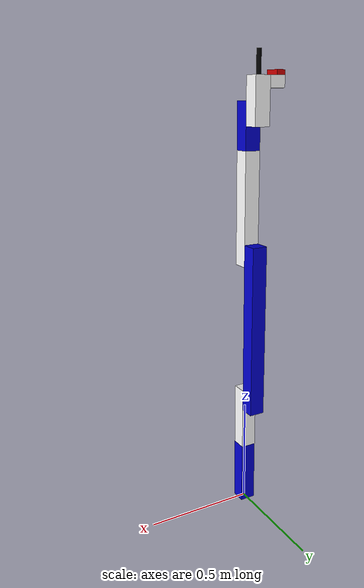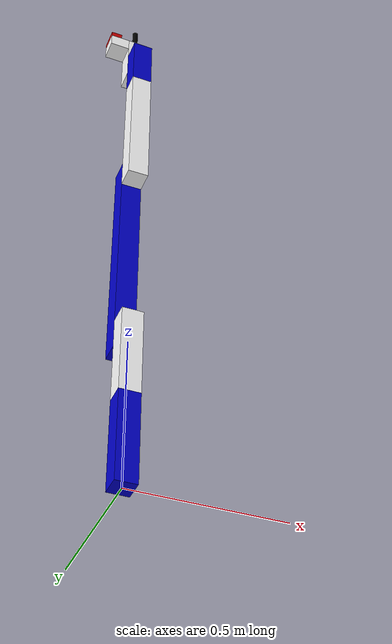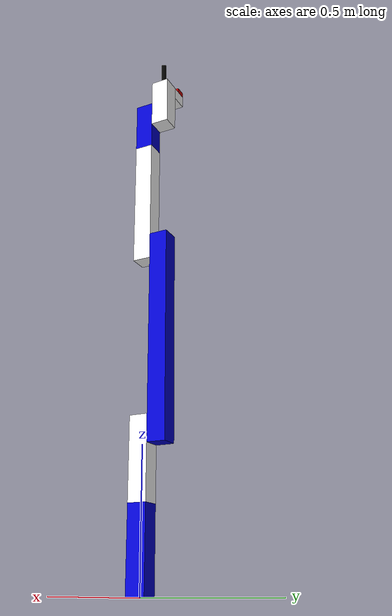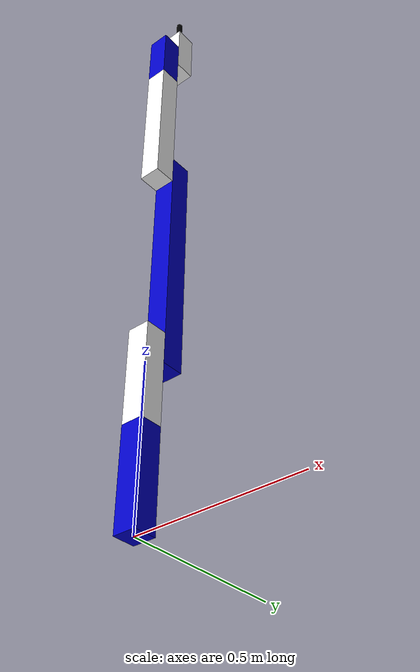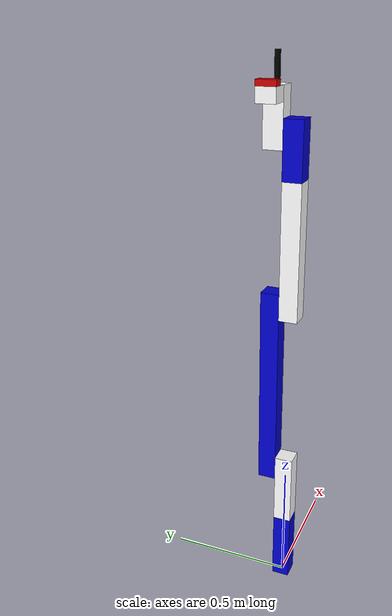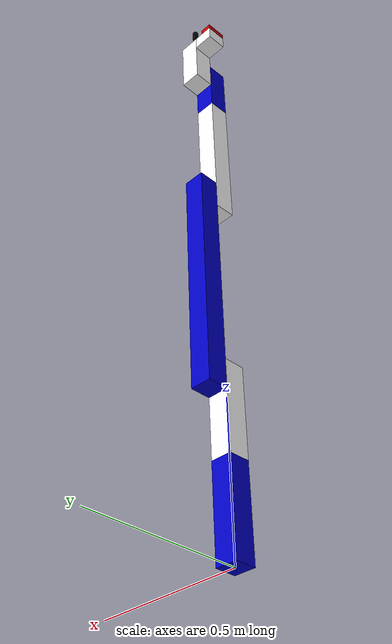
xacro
<?xml version="1.0"?>
<robot name="myrobot" xmlns:xacro="http://ros.org/wiki/xacro">
  <xacro:property name="width" value='0.07'/>
  <!--materials-->
  <material name="blue">
    <color rgba="0 0 0.8 1"/>
  </material>

  <material name="black">
    <color rgba="0 0 0 1"/>
  </material>

  <material name="white">
    <color rgba="1 1 1 1"/>
  </material>

  <material name="red">
    <color rgba="0.8 0.0 0.0 1.0"/>
  </material>
  <!--inertia macro-->
  <xacro:macro name="default_inertial" params="mass w h">
    <inertial>
      <mass value="${mass}" />
      <inertia ixx="1.0" ixy="0.0" ixz="0.0" iyy="1.0" iyz="0.0" izz="1.0" />
    </inertial>
  </xacro:macro>
<!--world link-->
  <link name="world"/>
<!--base link-->
  <link name="link_base">
    <visual>
        <origin xyz="0.0 0.0 0.15"/>
        <geometry>
            <box size= "${width} ${width} 0.3"/>
        </geometry>
        <material name="blue"/>
    </visual>
    <collision>
        <origin xyz="0.0 0.0 0.15"/>
        <geometry>
            <box size= "${width} ${width} 0.3"/>
        </geometry>
    </collision>
    <xacro:default_inertial mass="1" w="${width}" h="0.3"/>
  </link>
  <gazebo reference= "link_base">
      <mu1>0.2</mu1>
      <mu2>0.2</mu2>
      <material>Gazebo/Blue</material>
  </gazebo>
<!--second link z-axis rotate-->

    <link name="link_1">
        <visual>
            <origin xyz="0.0 0.0 0.15"/>
            <geometry>
                <box size="${width} ${width} 0.3"/>
            </geometry>
            <material name="white"/>
        </visual>
        <collision>
            <origin xyz="0.0 0.0 0.15"/>
            <geometry>
                <box size="${width} ${width} 0.3"/>
            </geometry>
        </collision>
        <xacro:default_inertial mass="1" w="${width}" h="0.3"/>
    </link>
    <gazebo reference= "link_1">
      <mu1>0.2</mu1>
      <mu2>0.2</mu2>
      <material>Gazebo/White</material>
    </gazebo>

<!--3th link z-axis rotate-->

    <link name="link_2">
        <visual>
            <origin xyz="0.0 0.0 0.35"/>
            <geometry>
                <box size="${width} ${width} 0.8"/>
            </geometry>
            <material name="blue"/>
        </visual>
        <collision>
            <origin xyz="0.0 0.0 0.35"/>
            <geometry>
                <box size="${width} ${width} 0.8"/>
            </geometry>
        </collision>
        <xacro:default_inertial mass="2" w="${width}" h="0.8"/>
    </link>
    <gazebo reference= "link_2">
      <mu1>0.2</mu1>
      <mu2>0.2</mu2>
      <material>Gazebo/Blue</material>
    </gazebo>

<!--4th link z-axis rotate-->

    <link name="link_3">
        <visual>
            <origin xyz="0.0 0.0 0.20"/>
            <geometry>
                <box size="${width} ${width} 0.5"/>
            </geometry>
            <material name="white"/>
        </visual>
        <collision>
            <origin xyz="0.0 0.0 0.20"/>
            <geometry>
                <box size="${width} ${width} 0.5"/>
            </geometry>
        </collision>
        <xacro:default_inertial mass="1.5" w="${width}" h="0.5"/>
    </link>
    <gazebo reference= "link_3">
      <mu1>0.2</mu1>
      <mu2>0.2</mu2>
      <material>Gazebo/White</material>
    </gazebo>

<!--5th link z-axis rotate-->

    <link name="link_4">
        <visual>
            <origin xyz="0.0 0.0 0.1"/>
            <geometry>
                <box size="${width} ${width} 0.2"/>
            </geometry>
            <material name="blue"/>
        </visual>
        <collision>
            <origin xyz="0.0 0.0 0.1"/>
            <geometry>
                <box size="${width} ${width} 0.2"/>
            </geometry>
        </collision>
        <xacro:default_inertial mass="0.7" w="${width}" h="0.2"/>
    </link>
    <gazebo reference= "link_4">
      <mu1>0.2</mu1>
      <mu2>0.2</mu2>
      <material>Gazebo/Blue</material>
    </gazebo>

<!--gripper link-->

    <link name="link_gripper">
        <visual>
            <origin xyz="0.0 0.0 0.05"/>
            <geometry>
                <box size="${width} ${width} 0.2"/>
            </geometry>
            <material name="white"/>
        </visual>
        <collision>
            <origin xyz="0.0 0.0 0.05"/>
            <geometry>
                <box size="${width} ${width} 0.2"/>
            </geometry>
        </collision>
        <xacro:default_inertial mass="0.2" w="${width}" h="0.2"/>
    </link>
    <gazebo reference= "link_gripper">
      <mu1>0.2</mu1>
      <mu2>0.2</mu2>
      <material>Gazebo/White</material>
    </gazebo>

<!--CameraHolder link-->

    <link name="link_cameraHolder">
        <visual>
            <origin xyz="0.0 0.0 0.0"/>
            <geometry>
                <box size="${width} ${width} 0.05"/>
            </geometry>
            <material name="white"/>
        </visual>
        <collision>
            <origin xyz="0.0 0.0 0.0"/>
            <geometry>
                <box size="${width} ${width} 0.05"/>
            </geometry>
        </collision>
        <xacro:default_inertial mass="0.2" w="${width}" h="0.05"/>
    </link>
    <gazebo reference= "link_cameraHolder">
      <mu1>0.2</mu1>
      <mu2>0.2</mu2>
      <material>Gazebo/White</material>
    </gazebo>

<!--camera link -->

    <link name="link_camera">
        <visual>
            <origin xyz="0.0 0.0 0.0"/>
            <geometry>
                <box size="0.02 0.07 0.04"/>
            </geometry>
            <material name="red"/>
        </visual>
        <collision>
            <origin xyz="0.0 0.0 0.0"/>
            <geometry>
                <box size="0.02 0.07 0.04"/>
            </geometry>
        </collision>
        <xacro:default_inertial mass="0.1" w="0.04" h="0.02"/>
    </link>
    <gazebo reference= "link_camera">
      <material>Gazebo/Red</material>
    </gazebo>

<!--vacuum link -->

    <link name="link_vacuum">
        <visual>
            <origin xyz="-0.05 0.0 0.0" rpy="0.0 ${pi/2} 0.0"/>
            <geometry>
                <cylinder length="0.1" radius="0.01"/>
            </geometry>
            <material name="black"/>
        </visual>
        <collision>
            <origin xyz="-0.05 0.0 0.0" rpy="0.0 ${pi/2} 0.0"/>
            <geometry>
                <cylinder length="0.1" radius="0.01"/>
            </geometry>
        </collision>
        <xacro:default_inertial mass="0.1" w="0.01" h="0.1"/>
    </link>
    <gazebo reference= "link_vacuum">
      <mu1>0.2</mu1>
      <mu2>0.2</mu2>
      <material>Gazebo/Black</material>
    </gazebo>

    <!-- tcp link -->
    <link name="link_tcp">
        <visual>
            <origin xyz="0.0 0.0 0.0" rpy="0.0 0.0 0.0"/>
            <geometry>
                <box size="0.0001 0.0001 0.0001"/>
            </geometry>
            <material name="black"/>
        </visual>
        <collision>
            <origin xyz="0.0 0.0 0.0" rpy="0.0 0.0 0.0"/>
            <geometry>
                <box size="0.0001 0.0001 0.0001"/>
            </geometry>
        </collision>
        <xacro:default_inertial mass="0.001" w="0.0001" h="0.001"/>
    </link>
    <gazebo reference= "link_tcp">
      <mu1>0.2</mu1>
      <mu2>0.2</mu2>
      <material>Gazebo/Black</material>
    </gazebo>

    <!--joint of world and link_base-->
    <joint name="joint_world_base" type="fixed">
      <origin xyz="0 0 0" rpy="0 0 0"/>
      <parent link="world"/>
      <child link="link_base"/>
    </joint>

    <!--joint of link_base and link_1-->
    <joint name="joint_base_1" type="revolute">
        <parent link="link_base"/>
        <child link="link_1"/>
        <origin xyz="0.0 0.0 0.3"/>
        <axis xyz="0 0 1"/>
        <limit effort="1000.0" upper="2.5" lower="-2.5" velocity="5.0"/>
        <dynamics damping="0.7" friction="0.7"/>
    </joint>

    <!--joint of link_1 and link_2-->
    <joint name="joint_1_2" type="revolute">
        <parent link="link_1"/>
        <child link="link_2"/>
        <origin xyz="0.0 ${width} 0.25"/>
        <axis xyz="0 1 0"/>
        <limit effort="1000.0" upper="2.0" lower="-2.0" velocity="5.0"/>
        <dynamics damping="0.7" friction="0.7"/>
    </joint>

    <!--joint of link_2 and link_3-->
    <joint name="joint_2_3" type="revolute">
        <parent link="link_2"/>
        <child link="link_3"/>
        <origin xyz="0.0 -${width} 0.7"/>
        <axis xyz="0 1 0"/>
        <limit effort="1000.0" upper="2.0" lower="-2.0" velocity="5.0"/>
        <dynamics damping="0.7" friction="0.7"/>
    </joint>

    <!--joint of link_3 and link_4-->
    <joint name="joint_3_4" type="revolute">
        <parent link="link_3"/>
        <child link="link_4"/>
        <origin xyz="0.0 0.0 0.45"/>
        <axis xyz="0 0 1"/>
        <limit effort="1000.0" upper="2.5" lower="-2.5" velocity="5.0"/>
        <dynamics damping="0.7" friction="0.7"/>
    </joint>

    <!--joint of link_4 and link_gripper-->
    <joint name="joint_4_gripper" type="revolute">
        <parent link="link_4"/>
        <child link="link_gripper"/>
        <origin xyz="0.0 ${width} 0.15"/>
        <axis xyz="0 1 0"/>
        <limit effort="1000.0" upper="2.0" lower="-2.0" velocity="5.0"/>
        <dynamics damping="0.7" friction="0.7"/>
    </joint>

    <!--joint of link_gripper and link_cameraHolder-->
    <joint name="joint_gripper_cameraHolder" type="fixed">
      <origin xyz="-${width} 0 0.125" rpy="0 0 0"/>
      <parent link="link_gripper"/>
      <child link="link_cameraHolder"/>
    </joint>

    <!--joint of link_cameraHolder and link_camera-->
    <joint name="joint_cameraHolder_camera" type="revolute">
        <parent link="link_cameraHolder"/>
        <child link="link_camera"/>
        <origin xyz="-0.015 0.0 0.035" rpy="0.0 ${-pi/2} 0.0"/>
        <!-- added for revolute joint type -->
        <axis xyz="1 0 0"/>
        <limit effort="1000.0" upper="0.0" lower="0.0" velocity="0.0"/>
        <dynamics damping="100.0" friction="100.0"/>
    </joint>

    <!--joint of link_gripper and link_vacuum-->
    <joint name="joint_gripper_vacuum" type="revolute">
        <parent link="link_gripper"/>
        <child link="link_vacuum"/>
        <origin xyz="0.0 0.0 0.25" rpy="0.0 ${-pi/2} 0.0"/>
        <axis xyz="1 0 0"/>
        <limit effort="1000.0" upper="2.0" lower="-2.0" velocity="5.0"/>
        <dynamics damping="0.7" friction="0.7"/>
    </joint>

    <!--joint of link_vacuum and link_tcp-->
    <joint name="joint_vacuum_tcp" type="revolute">
        <parent link="link_vacuum"/>
        <child link="link_tcp"/>
        <origin xyz="0.0 0.0 0.0" rpy="0.0 0.0 0.0"/>
        <axis xyz="1 0 0"/>
        <limit effort="1000.0" upper="2.0" lower="-2.0" velocity="5.0"/>
        <dynamics damping="0.7" friction="0.7"/>
    </joint>

    <!--ros2_control module-->
    <ros2_control name="GazeboSystem" type="system">
      <hardware>
        <plugin>gazebo_ros2_control/GazeboSystem</plugin>
      </hardware>

      <joint name="joint_base_1">
        <command_interface name="position">
          <param name="min">-2.5</param>
          <param name="max">2.5</param>
        </command_interface>
        <state_interface name="position"/>
        <state_interface name="velocity"/>
        <state_interface name="effort"/>
      </joint>

      <joint name="joint_1_2">
        <command_interface name="position">
          <param name="min">-2.0</param>
          <param name="max">2.0</param>
        </command_interface>
        <state_interface name="position"/>
        <state_interface name="velocity"/>
        <state_interface name="effort"/>
      </joint>

      <joint name="joint_2_3">
        <command_interface name="position">
          <param name="min">-2.0</param>
          <param name="max">2.0</param>
        </command_interface>
        <state_interface name="position"/>
        <state_interface name="velocity"/>
        <state_interface name="effort"/>
      </joint>

      <joint name="joint_3_4">
        <command_interface name="position">
          <param name="min">-2.5</param>
          <param name="max">2.5</param>
        </command_interface>
        <state_interface name="position"/>
        <state_interface name="velocity"/>
        <state_interface name="effort"/>
      </joint>

      <joint name="joint_4_gripper">
        <command_interface name="position">
          <param name="min">-2.0</param>
          <param name="max">2.0</param>
        </command_interface>
        <state_interface name="position"/>
        <state_interface name="velocity"/>
        <state_interface name="effort"/>
      </joint>

      <joint name="joint_gripper_vacuum">
        <command_interface name="position">
          <param name="min">-2.0</param>
          <param name="max">2.0</param>
        </command_interface>
        <state_interface name="position"/>
        <state_interface name="velocity"/>
        <state_interface name="effort"/>
      </joint>

      <!-- added for camera revolute joint type -->
      <joint name="joint_cameraHolder_camera">
        <command_interface name="position">
          <param name="min">-0.0</param>
          <param name="max">0.0</param>
        </command_interface>
        <state_interface name="position"/>
        <state_interface name="velocity"/>
        <state_interface name="effort"/>
      </joint>

      <!-- added for tcp revolute joint type -->
      <joint name="joint_vacuum_tcp">
        <command_interface name="position">
          <param name="min">-0.0</param>
          <param name="max">0.0</param>
        </command_interface>
        <state_interface name="position"/>
        <state_interface name="velocity"/>
        <state_interface name="effort"/>
      </joint>

    </ros2_control>

    <!--gazebo plugins-->
    <!--plugin for ros2 control-->
    <gazebo>
      <plugin name="gazebo_ros2_control" filename="libgazebo_ros2_control.so">
        <parameters>$(find myrobot)/model/myrobot_ros2_controllers.yaml</parameters>
      </plugin>
    </gazebo>

    <!--plugin for camera-->
    <gazebo reference="link_camera">
    <sensor type="multicamera" name="sensor_name">
          <camera name="left">
            <horizontal_fov>1.3962634</horizontal_fov>
            <image>
              <width>800</width>
              <height>800</height>
              <format>R8G8B8</format>
            </image>
            <clip>
              <near>0.02</near>
              <far>300</far>
            </clip>
            <noise>
              <type>gaussian</type>
              <mean>0.0</mean>
              <stddev>0.007</stddev>
            </noise>
          </camera>
          <camera name="right">
            <pose>0 -0.07 0 0 0 0</pose>
            <horizontal_fov>1.3962634</horizontal_fov>
            <image>
              <width>800</width>
              <height>800</height>
              <format>R8G8B8</format>
            </image>
            <clip>
              <near>0.02</near>
              <far>300</far>
            </clip>
            <noise>
              <type>gaussian</type>
              <mean>0.0</mean>
              <stddev>0.007</stddev>
            </noise>
          </camera>

          <!-- Set update_rate only sensor, not on plugin -->
          <update_rate>1</update_rate>

          <plugin name="cameras" filename="libgazebo_ros_camera.so">

            <ros>
              <namespace>/robot_model</namespace>
              <!-- topics need to be prefixed with camera_name for remapping -->
              <argument>custom_camera/left/image_raw:=camera/left/image</argument>
              <argument>custom_camera/right/image_raw:=camera/right/image</argument>
              <argument>custom_camera/left/camera_info:=camera/left/camera_info</argument>
              <argument>custom_camera/right/camera_info:=camera/right/camera_info</argument>
            </ros>

            <camera_name>stereocamera</camera_name>

            <frameName>left_camera_optical_frame</frameName>
          </plugin>
        </sensor>
    </gazebo>

  <!-- vacuum gripper plugins -->
  <gazebo>
    <plugin  name='vacuum_gripper' filename='libgazebo_ros_vacuum_gripper.so'>
      <ros>
        <namespace>/robot_model</namespace>
      </ros>
      <link_name>link_tcp</link_name>
      <max_distance>0.3</max_distance>
    </plugin>
  </gazebo>

</robot>
